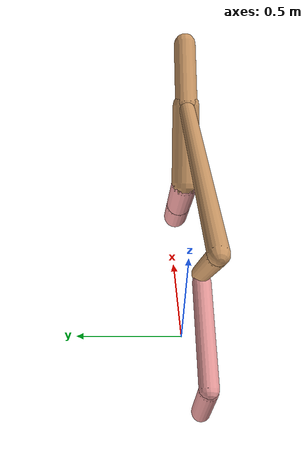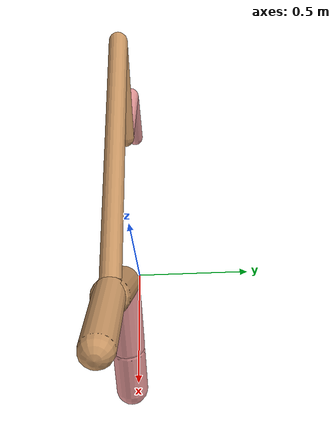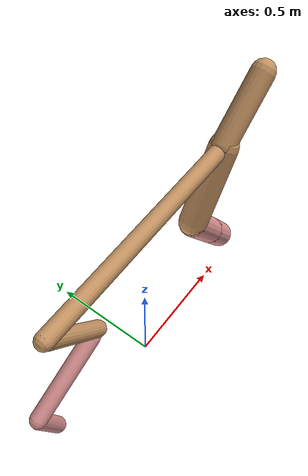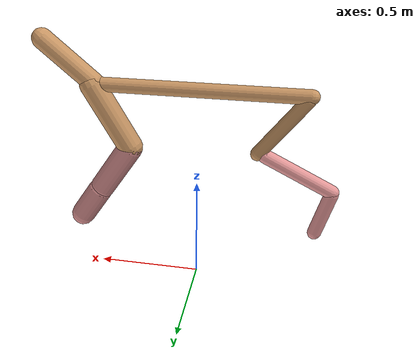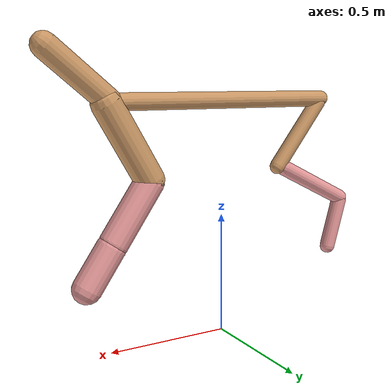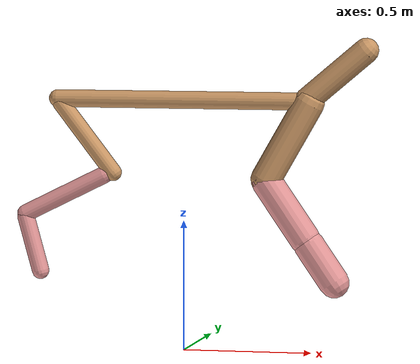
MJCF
<mujoco model="cheetah">
  <compiler angle="radian" coordinate="local" inertiafromgeom="true" settotalmass="14" />
  <default>
    <joint armature=".1" damping=".01" limited="true" solimplimit="0 .8 .03" solreflimit=".02 1" stiffness="8" />
    <geom conaffinity="0" condim="3" contype="1" friction="0.8 .1 .1" rgba="0.8 0.6 .4 1" solimp="0.0 0.8 0.01" solref="0.02 1" />
    <motor ctrllimited="true" ctrlrange="-1 1" />
  </default>
  <size nstack="300000" nuser_geom="1" />
  <option gravity="0 0 -9.81" timestep="0.01" />
  <worldbody>
    <body name="torso" pos="0.0 0.0 0.9683424800729197">
      <joint armature="0" axis="1 0 0" damping="0" limited="false" name="ignorex" pos="0 0 0" stiffness="0" type="slide" />
      <joint armature="0" axis="0 0 1" damping="0" limited="false" name="ignorez" pos="0 0 0" stiffness="0" type="slide" />
      <joint armature="0" axis="0 1 0" damping="0" limited="false" name="ignorey" pos="0 0 0" stiffness="0" type="hinge" />
      <geom fromto="-0.5 0.0 0.0 0.4959714215232935 0.0 0.0" name="torso" size="0.033715589362174656" type="capsule" />
      <geom axisangle="0 1 0 .87" name="head" pos="0.5959714215232935 0.0 0.1" size="0.048647424694902054 0.15" type="capsule" />

      <body name="bthigh" pos="-.5 0 0">
        <joint axis="0 1 0" damping="6" name="bthigh" pos="0 0 0" range="-.52 1.05" stiffness="240" type="hinge" />
        <geom axisangle="0 1 0 -3.8" name="bthigh" pos="0.11551608997937984 0.0 -0.1501709169731938" size="0.033288662778195637 0.1704482797019305" type="capsule" />
        <body name="bshin" pos="0.19103217995875968 0.0 -0.2903418339463876">
          <joint axis="0 1 0" damping="4.5" name="bshin" pos="0 0 0" range="-.785 .785" stiffness="180" type="hinge" />
          <geom axisangle="0 1 0 -2.03" name="bshin" pos="-0.1635465172374944 0.0 -0.0817732586187472" rgba="0.9 0.6 0.6 1" size="0.033288662778195637 0.17632580658820396" type="capsule" />
          <body name="bfoot" pos="-0.3270930344749888 0.0 -0.1635465172374944">
            <joint axis="0 1 0" damping="3" name="bfoot" pos="0 0 0" range="-.4 .785" stiffness="120" type="hinge" />
            <geom axisangle="0 1 0 -.27" name="bfoot" pos="0.03487451336774505 0.0 -0.112760926555709" rgba="0.9 0.6 0.6 1" size="0.033288662778195637 0.11049750546194115" type="capsule" />
            <inertial mass="10" />
          </body>
        </body>
      </body>
      <body name="fthigh" pos="0.49597142152329354 0.0 0.0">
        <joint axis="0 1 0" damping="4.5" name="fthigh" pos="0 0 0" range="-1.5 0.8" stiffness="180" type="hinge" />
        <geom axisangle="0 1 0 .52" name="fthigh" pos="-0.0888105963214022 0.0 -0.15224673655097518" size="0.05919988192938057 0.17033216511474722" type="capsule" />
        <body name="fshin" pos="-0.1776211926428044 0.0 -0.30449347310195035">
          <joint axis="0 1 0" damping="3" name="fshin" pos="0 0 0" range="-1.2 1.1" stiffness="120" type="hinge" />
          <geom axisangle="0 1 0 -.6" name="fshin" pos="0.08242036679022326 0.0 -0.11412050786338604" rgba="0.9 0.6 0.6 1" size="0.05919988192938057 0.13575345490348273" type="capsule" />
          <body name="ffoot" pos="0.1648407335804465 0.0 -0.22824101572677208">
            <joint axis="0 1 0" damping="1.5" name="ffoot" pos="0 0 0" range="-3.1 -0.3" stiffness="60" type="hinge" />
            <geom axisangle="0 1 0 -.6" name="ffoot" pos="0.05562507983472027 0.0 -0.08652790196512043" rgba="0.9 0.6 0.6 1" size="0.05919988192938057 0.08964850795513012" type="capsule" />
            <inertial mass="10" />
          </body>
        </body>
      </body>
    </body>
  </worldbody>
  <actuator>
    <motor gear="120" joint="bthigh" name="bthigh" />
    <motor gear="90" joint="bshin" name="bshin" />
    <motor gear="60" joint="bfoot" name="bfoot" />
    <motor gear="120" joint="fthigh" name="fthigh" />
    <motor gear="60" joint="fshin" name="fshin" />
    <motor gear="30" joint="ffoot" name="ffoot" />
  </actuator>
</mujoco>
